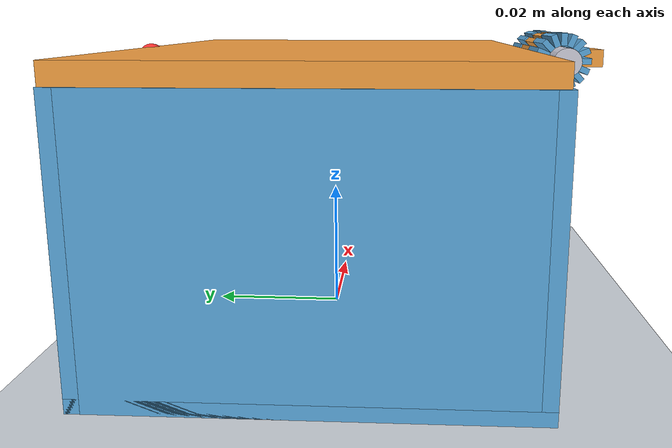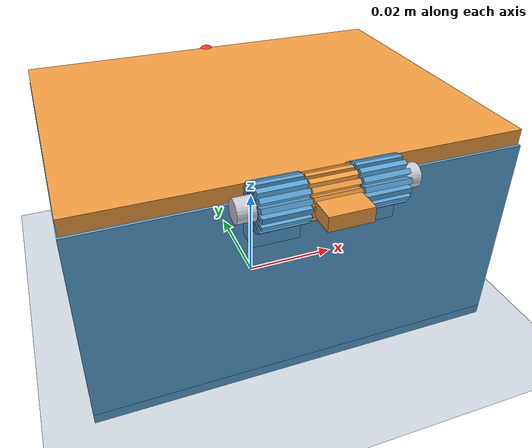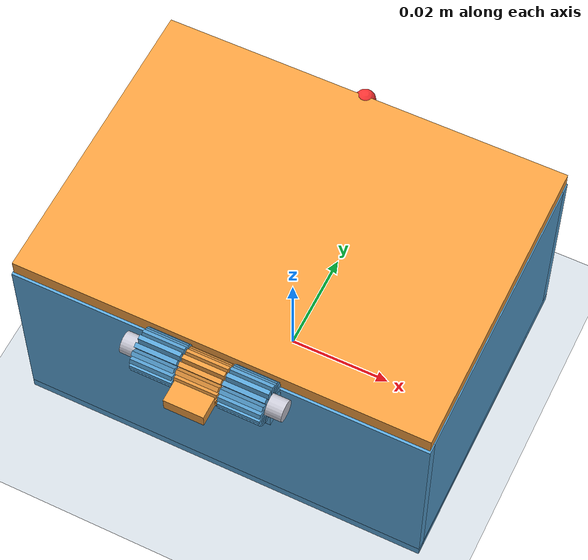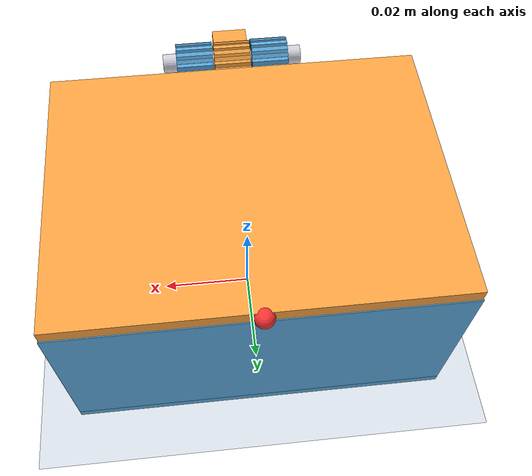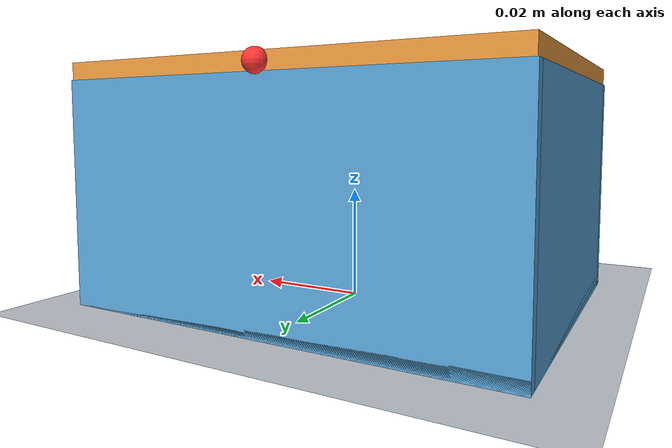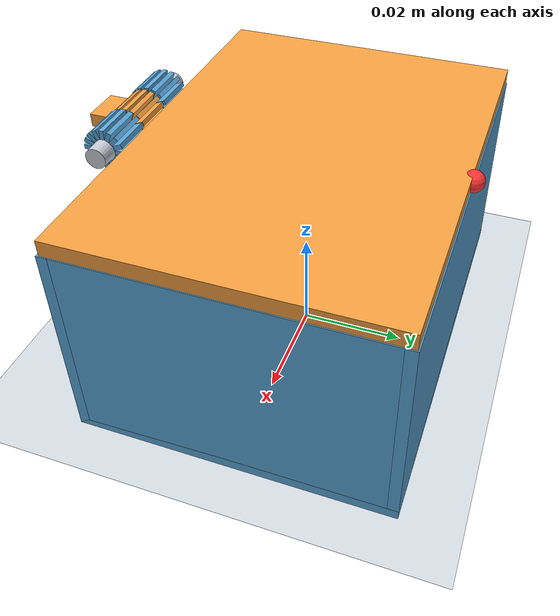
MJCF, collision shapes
<?xml version="1.0" ?>
<mujoco model="m0_hinge_box_V-B">
  <compiler angle="radian" meshdir="meshes" autolimits="true"/>
  <option timestep="0.0005" integrator="implicitfast" cone="elliptic" impratio="10"/>
  <visual>
    <headlight ambient="0.5 0.5 0.5" diffuse="0.6 0.6 0.6" specular="0.2 0.2 0.2"/>
    <global offwidth="1280" offheight="960" azimuth="140" elevation="-20"/>
    <rgba haze="0.9 0.93 0.96 1"/>
  </visual>
  <default>
    <geom solref="0.001 1.0" solimp="0.99 0.9999 0.0001" friction="0.3 0.005 0.0001" condim="4" density="0"/>
  </default>
  <asset>
    <texture name="grid" type="2d" builtin="checker" rgb1=".15 .17 .2" rgb2=".22 .24 .28" width="300" height="300"/>
    <material name="grid" texture="grid" texrepeat="6 6" reflectance=".1"/>
    <material name="petg" rgba="0.35 0.65 0.85 1"/>
    <material name="petg_lid" rgba="0.95 0.62 0.25 1"/>
    <material name="steel" rgba="0.8 0.8 0.85 1"/>
    <mesh name="box_shell_vis" file="box_shell_visual.stl"/>
    <mesh name="lid_panel_vis" file="lid_panel_visual.stl"/>
    <mesh name="hinge_pin_vis" file="hinge_pin_visual.stl"/>
  </asset>
  <worldbody>
    <light pos="0.15 -0.25 0.4" dir="-0.3 0.5 -1" directional="true" diffuse="0.5 0.5 0.5"/>
    <light pos="-0.2 0.2 0.3" dir="0.4 -0.4 -1" directional="true" diffuse="0.25 0.25 0.25"/>
    <geom name="floor" type="plane" size="1 1 .05" rgba="0.82 0.85 0.88 1" pos="0 0 0"/>
    <camera name="iso" pos="0.125 -0.125 0.115" xyaxes="0.707 0.707 0 -0.38 0.38 0.84"/>
    <camera name="hinge_closeup" pos="0.065 -0.105 0.085" xyaxes="0.85 0.53 0 -0.32 0.51 0.80"/>
    <body name="box_shell" pos="0 0 0">
      <inertial pos="-0.000000000 -0.000895754 0.015333721" mass="0.039507716" fullinertia="0.000027786203 0.000038421717 0.000051891681 0.000000000000 -0.000000000000 0.000000868629"/>
      <geom name="box_shell_vis" type="mesh" mesh="box_shell_vis" contype="0" conaffinity="0" group="2" material="petg"/>
      <geom name="box_shell_c0" type="box" pos="0.000000000 0.000000000 0.001000000" size="0.040000000 0.030000000 0.001000000" group="3" material="petg"/>
      <geom name="box_shell_c1" type="box" pos="0.000000000 -0.029000000 0.020000000" size="0.040000000 0.001000000 0.020000000" group="3" material="petg"/>
      <geom name="box_shell_c2" type="box" pos="0.000000000 0.029000000 0.020000000" size="0.040000000 0.001000000 0.020000000" group="3" material="petg"/>
      <geom name="box_shell_c3" type="box" pos="-0.039000000 0.000000000 0.020000000" size="0.001000000 0.028000000 0.020000000" group="3" material="petg"/>
      <geom name="box_shell_c4" type="box" pos="0.039000000 0.000000000 0.020000000" size="0.001000000 0.028000000 0.020000000" group="3" material="petg"/>
      <geom name="box_shell_c5" type="box" pos="-0.008300000 -0.030903940 0.041500000" size="0.004000000 0.000903940 0.000436040" group="3" material="petg" euler="0.000000000 0.000000000 0.000000000"/>
      <geom name="box_shell_c6" type="box" pos="-0.008300000 -0.031139613 0.042684811" size="0.004000000 0.000903940 0.000436040" group="3" material="petg" euler="0.392699082 0.000000000 0.000000000"/>
      <geom name="box_shell_c7" type="box" pos="-0.008300000 -0.031810755 0.043689245" size="0.004000000 0.000903940 0.000436040" group="3" material="petg" euler="0.785398163 0.000000000 0.000000000"/>
      <geom name="box_shell_c8" type="box" pos="-0.008300000 -0.032815189 0.044360387" size="0.004000000 0.000903940 0.000436040" group="3" material="petg" euler="1.178097245 0.000000000 0.000000000"/>
      <geom name="box_shell_c9" type="box" pos="-0.008300000 -0.034000000 0.044596060" size="0.004000000 0.000903940 0.000436040" group="3" material="petg" euler="1.570796327 0.000000000 0.000000000"/>
      <geom name="box_shell_c10" type="box" pos="-0.008300000 -0.035184811 0.044360387" size="0.004000000 0.000903940 0.000436040" group="3" material="petg" euler="1.963495408 0.000000000 0.000000000"/>
      <geom name="box_shell_c11" type="box" pos="-0.008300000 -0.036189245 0.043689245" size="0.004000000 0.000903940 0.000436040" group="3" material="petg" euler="2.356194490 0.000000000 0.000000000"/>
      <geom name="box_shell_c12" type="box" pos="-0.008300000 -0.036860387 0.042684811" size="0.004000000 0.000903940 0.000436040" group="3" material="petg" euler="2.748893572 0.000000000 0.000000000"/>
      <geom name="box_shell_c13" type="box" pos="-0.008300000 -0.037096060 0.041500000" size="0.004000000 0.000903940 0.000436040" group="3" material="petg" euler="3.141592654 0.000000000 0.000000000"/>
      <geom name="box_shell_c14" type="box" pos="-0.008300000 -0.036860387 0.040315189" size="0.004000000 0.000903940 0.000436040" group="3" material="petg" euler="3.534291735 0.000000000 0.000000000"/>
      <geom name="box_shell_c15" type="box" pos="-0.008300000 -0.036189245 0.039310755" size="0.004000000 0.000903940 0.000436040" group="3" material="petg" euler="3.926990817 0.000000000 0.000000000"/>
      <geom name="box_shell_c16" type="box" pos="-0.008300000 -0.035184811 0.038639613" size="0.004000000 0.000903940 0.000436040" group="3" material="petg" euler="4.319689899 0.000000000 0.000000000"/>
      <geom name="box_shell_c17" type="box" pos="-0.008300000 -0.034000000 0.038403940" size="0.004000000 0.000903940 0.000436040" group="3" material="petg" euler="4.712388980 0.000000000 0.000000000"/>
      <geom name="box_shell_c18" type="box" pos="-0.008300000 -0.032815189 0.038639613" size="0.004000000 0.000903940 0.000436040" group="3" material="petg" euler="5.105088062 0.000000000 0.000000000"/>
      <geom name="box_shell_c19" type="box" pos="-0.008300000 -0.031810755 0.039310755" size="0.004000000 0.000903940 0.000436040" group="3" material="petg" euler="5.497787144 0.000000000 0.000000000"/>
      <geom name="box_shell_c20" type="box" pos="-0.008300000 -0.031139613 0.040315189" size="0.004000000 0.000903940 0.000436040" group="3" material="petg" euler="5.890486225 0.000000000 0.000000000"/>
      <geom name="box_shell_c21" type="box" pos="-0.008300000 -0.031000000 0.036550000" size="0.004000000 0.003000000 0.002500000" group="3" material="petg"/>
      <geom name="box_shell_c22" type="box" pos="0.008300000 -0.030903940 0.041500000" size="0.004000000 0.000903940 0.000436040" group="3" material="petg" euler="0.000000000 0.000000000 0.000000000"/>
      <geom name="box_shell_c23" type="box" pos="0.008300000 -0.031139613 0.042684811" size="0.004000000 0.000903940 0.000436040" group="3" material="petg" euler="0.392699082 0.000000000 0.000000000"/>
      <geom name="box_shell_c24" type="box" pos="0.008300000 -0.031810755 0.043689245" size="0.004000000 0.000903940 0.000436040" group="3" material="petg" euler="0.785398163 0.000000000 0.000000000"/>
      <geom name="box_shell_c25" type="box" pos="0.008300000 -0.032815189 0.044360387" size="0.004000000 0.000903940 0.000436040" group="3" material="petg" euler="1.178097245 0.000000000 0.000000000"/>
      <geom name="box_shell_c26" type="box" pos="0.008300000 -0.034000000 0.044596060" size="0.004000000 0.000903940 0.000436040" group="3" material="petg" euler="1.570796327 0.000000000 0.000000000"/>
      <geom name="box_shell_c27" type="box" pos="0.008300000 -0.035184811 0.044360387" size="0.004000000 0.000903940 0.000436040" group="3" material="petg" euler="1.963495408 0.000000000 0.000000000"/>
      <geom name="box_shell_c28" type="box" pos="0.008300000 -0.036189245 0.043689245" size="0.004000000 0.000903940 0.000436040" group="3" material="petg" euler="2.356194490 0.000000000 0.000000000"/>
      <geom name="box_shell_c29" type="box" pos="0.008300000 -0.036860387 0.042684811" size="0.004000000 0.000903940 0.000436040" group="3" material="petg" euler="2.748893572 0.000000000 0.000000000"/>
      <geom name="box_shell_c30" type="box" pos="0.008300000 -0.037096060 0.041500000" size="0.004000000 0.000903940 0.000436040" group="3" material="petg" euler="3.141592654 0.000000000 0.000000000"/>
      <geom name="box_shell_c31" type="box" pos="0.008300000 -0.036860387 0.040315189" size="0.004000000 0.000903940 0.000436040" group="3" material="petg" euler="3.534291735 0.000000000 0.000000000"/>
      <geom name="box_shell_c32" type="box" pos="0.008300000 -0.036189245 0.039310755" size="0.004000000 0.000903940 0.000436040" group="3" material="petg" euler="3.926990817 0.000000000 0.000000000"/>
      <geom name="box_shell_c33" type="box" pos="0.008300000 -0.035184811 0.038639613" size="0.004000000 0.000903940 0.000436040" group="3" material="petg" euler="4.319689899 0.000000000 0.000000000"/>
      <geom name="box_shell_c34" type="box" pos="0.008300000 -0.034000000 0.038403940" size="0.004000000 0.000903940 0.000436040" group="3" material="petg" euler="4.712388980 0.000000000 0.000000000"/>
      <geom name="box_shell_c35" type="box" pos="0.008300000 -0.032815189 0.038639613" size="0.004000000 0.000903940 0.000436040" group="3" material="petg" euler="5.105088062 0.000000000 0.000000000"/>
      <geom name="box_shell_c36" type="box" pos="0.008300000 -0.031810755 0.039310755" size="0.004000000 0.000903940 0.000436040" group="3" material="petg" euler="5.497787144 0.000000000 0.000000000"/>
      <geom name="box_shell_c37" type="box" pos="0.008300000 -0.031139613 0.040315189" size="0.004000000 0.000903940 0.000436040" group="3" material="petg" euler="5.890486225 0.000000000 0.000000000"/>
      <geom name="box_shell_c38" type="box" pos="0.008300000 -0.031000000 0.036550000" size="0.004000000 0.003000000 0.002500000" group="3" material="petg"/>
      <site name="box_axis" pos="0.000000000 -0.034000000 0.041500000" size="0.0012" rgba="0.1 0.9 0.2 1"/>
    </body>
    <body name="lid_panel" pos="0 0 0">
      <freejoint name="lid_panel_free"/>
      <inertial pos="0.000000000 -0.000431079 0.041509611" mass="0.018454377" fullinertia="0.000005845828 0.000009579734 0.000015394728 0.000000000000 0.000000000000 0.000000005020"/>
      <geom name="lid_panel_vis" type="mesh" mesh="lid_panel_vis" contype="0" conaffinity="0" group="2" material="petg_lid"/>
      <geom name="lid_panel_c0" type="box" pos="0.000000000 0.000150000 0.041500000" size="0.039800000 0.029650000 0.001500000" group="3" material="petg_lid"/>
      <geom name="lid_panel_c1" type="box" pos="0.000000000 -0.039500000 0.041500000" size="0.003800000 0.002300000 0.001300000" group="3" material="petg_lid"/>
      <geom name="lid_panel_c2" type="box" pos="0.000000000 -0.031003940 0.041500000" size="0.004000000 0.000803940 0.000436040" group="3" material="petg_lid" euler="0.000000000 0.000000000 0.000000000"/>
      <geom name="lid_panel_c3" type="box" pos="0.000000000 -0.031232001 0.042646543" size="0.004000000 0.000803940 0.000436040" group="3" material="petg_lid" euler="0.392699082 0.000000000 0.000000000"/>
      <geom name="lid_panel_c4" type="box" pos="0.000000000 -0.031881465 0.043618535" size="0.004000000 0.000803940 0.000436040" group="3" material="petg_lid" euler="0.785398163 0.000000000 0.000000000"/>
      <geom name="lid_panel_c5" type="box" pos="0.000000000 -0.032853457 0.044267999" size="0.004000000 0.000803940 0.000436040" group="3" material="petg_lid" euler="1.178097245 0.000000000 0.000000000"/>
      <geom name="lid_panel_c6" type="box" pos="0.000000000 -0.034000000 0.044496060" size="0.004000000 0.000803940 0.000436040" group="3" material="petg_lid" euler="1.570796327 0.000000000 0.000000000"/>
      <geom name="lid_panel_c7" type="box" pos="0.000000000 -0.035146543 0.044267999" size="0.004000000 0.000803940 0.000436040" group="3" material="petg_lid" euler="1.963495408 0.000000000 0.000000000"/>
      <geom name="lid_panel_c8" type="box" pos="0.000000000 -0.036118535 0.043618535" size="0.004000000 0.000803940 0.000436040" group="3" material="petg_lid" euler="2.356194490 0.000000000 0.000000000"/>
      <geom name="lid_panel_c9" type="box" pos="0.000000000 -0.036767999 0.042646543" size="0.004000000 0.000803940 0.000436040" group="3" material="petg_lid" euler="2.748893572 0.000000000 0.000000000"/>
      <geom name="lid_panel_c10" type="box" pos="0.000000000 -0.036996060 0.041500000" size="0.004000000 0.000803940 0.000436040" group="3" material="petg_lid" euler="3.141592654 0.000000000 0.000000000"/>
      <geom name="lid_panel_c11" type="box" pos="0.000000000 -0.036767999 0.040353457" size="0.004000000 0.000803940 0.000436040" group="3" material="petg_lid" euler="3.534291735 0.000000000 0.000000000"/>
      <geom name="lid_panel_c12" type="box" pos="0.000000000 -0.036118535 0.039381465" size="0.004000000 0.000803940 0.000436040" group="3" material="petg_lid" euler="3.926990817 0.000000000 0.000000000"/>
      <geom name="lid_panel_c13" type="box" pos="0.000000000 -0.035146543 0.038732001" size="0.004000000 0.000803940 0.000436040" group="3" material="petg_lid" euler="4.319689899 0.000000000 0.000000000"/>
      <geom name="lid_panel_c14" type="box" pos="0.000000000 -0.034000000 0.038503940" size="0.004000000 0.000803940 0.000436040" group="3" material="petg_lid" euler="4.712388980 0.000000000 0.000000000"/>
      <geom name="lid_panel_c15" type="box" pos="0.000000000 -0.032853457 0.038732001" size="0.004000000 0.000803940 0.000436040" group="3" material="petg_lid" euler="5.105088062 0.000000000 0.000000000"/>
      <geom name="lid_panel_c16" type="box" pos="0.000000000 -0.031881465 0.039381465" size="0.004000000 0.000803940 0.000436040" group="3" material="petg_lid" euler="5.497787144 0.000000000 0.000000000"/>
      <geom name="lid_panel_c17" type="box" pos="0.000000000 -0.031232001 0.040353457" size="0.004000000 0.000803940 0.000436040" group="3" material="petg_lid" euler="5.890486225 0.000000000 0.000000000"/>
      <site name="lid_tip" pos="0.000000000 0.030000000 0.041500000" size="0.002" rgba="1 0.2 0.2 1"/>
    </body>
    <body name="hinge_pin" pos="0 0 0">
      <freejoint name="hinge_pin_free"/>
      <inertial pos="0.000000000 -0.034000000 0.041500000" mass="0.000487545" fullinertia="0.000000000973 0.000000038530 0.000000038530 -0.000000000000 0.000000000000 -0.000000000000"/>
      <geom name="hinge_pin_vis" type="mesh" mesh="hinge_pin_vis" contype="0" conaffinity="0" group="2" material="steel"/>
      <geom name="hinge_pin_c0" type="cylinder" pos="0.000000000 -0.034000000 0.041500000" size="0.002000000 0.015300000" group="3" material="steel" euler="0.000000000 1.570796327 0.000000000"/>
      <site name="pin_center" pos="0.000000000 -0.034000000 0.041500000" size="0.0012" rgba="0.9 0.1 0.9 1"/>
    </body>
  </worldbody>
</mujoco>
